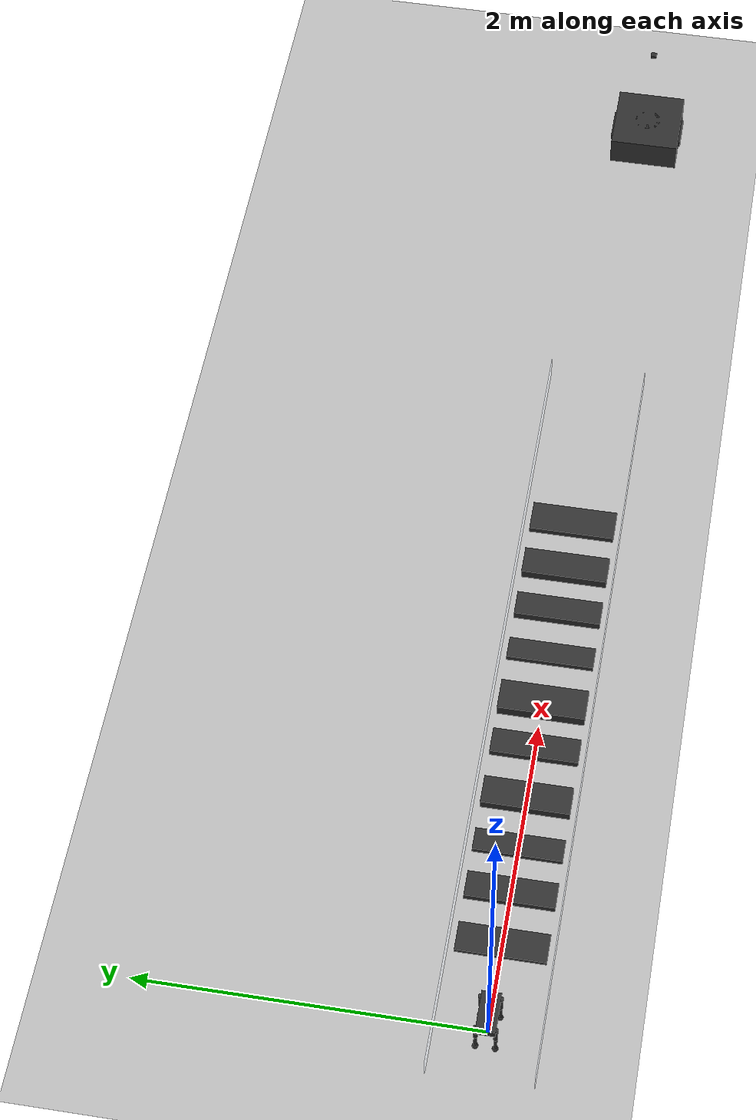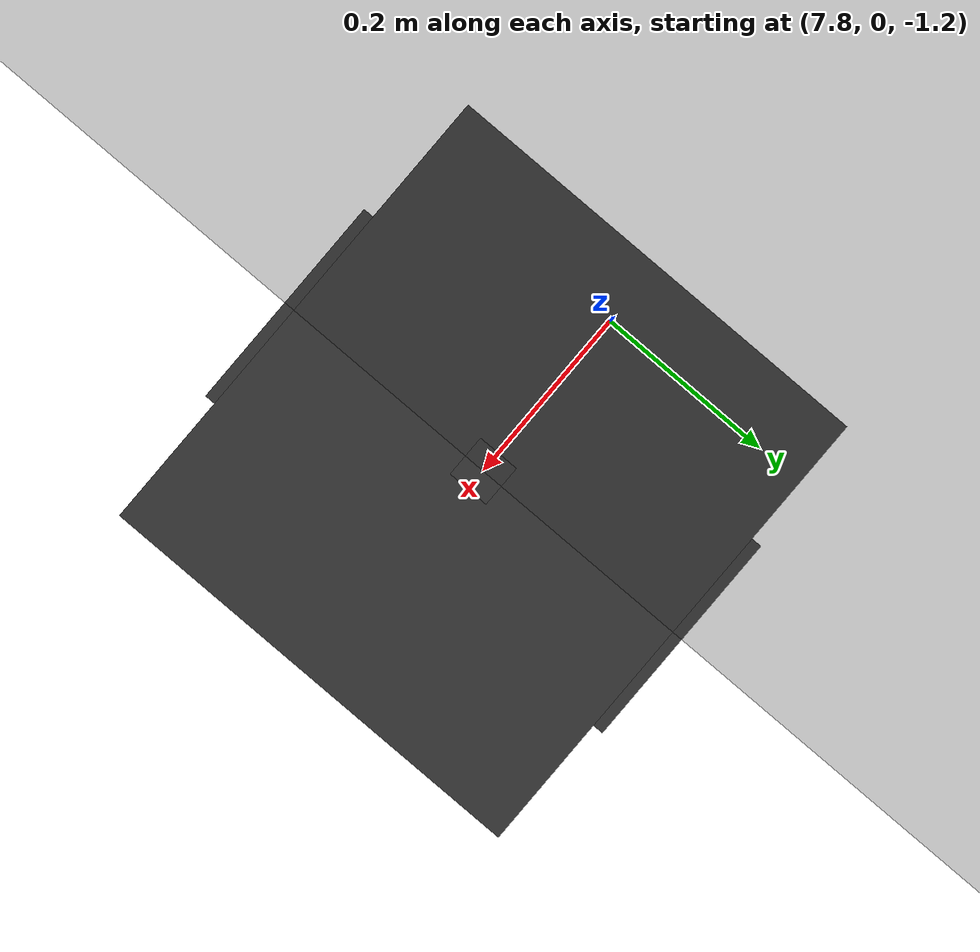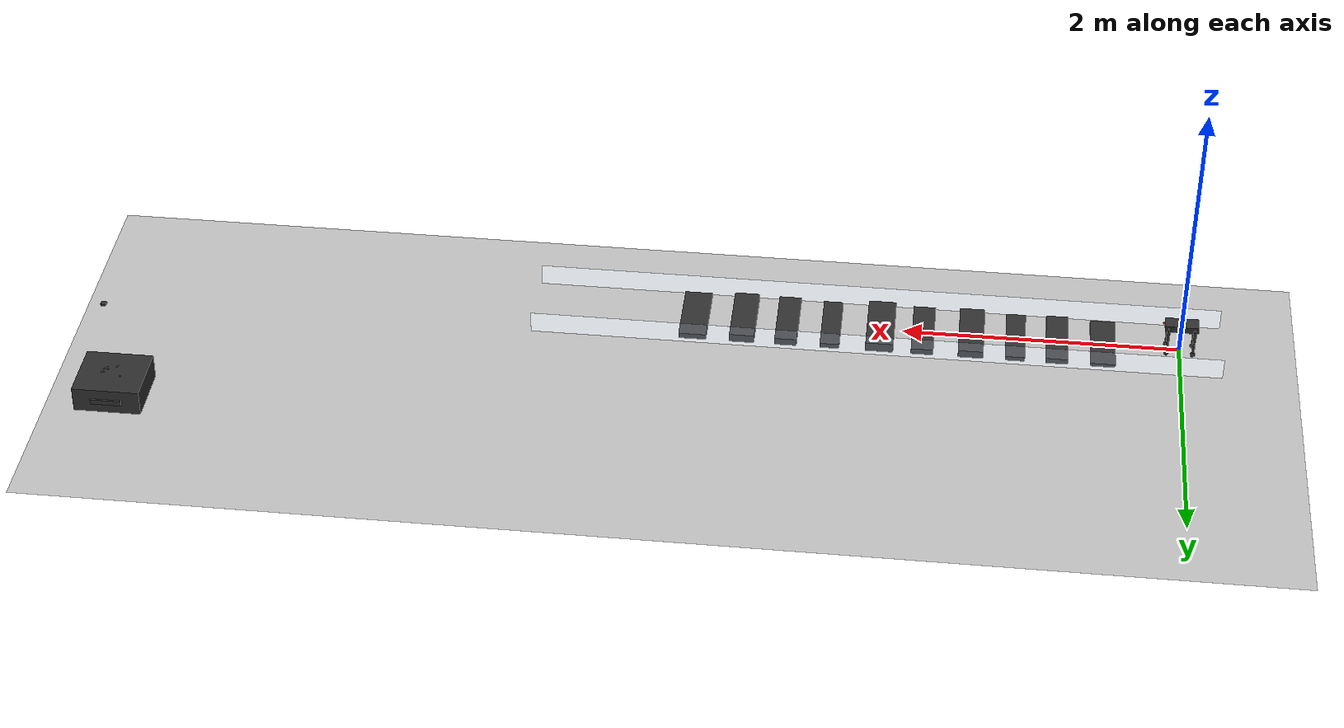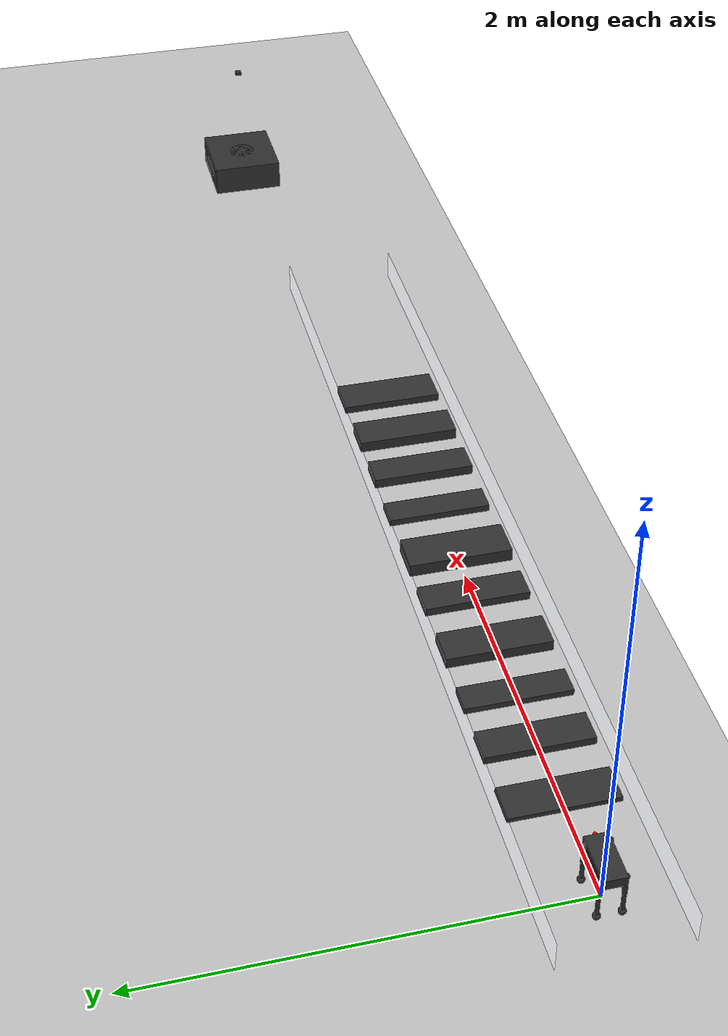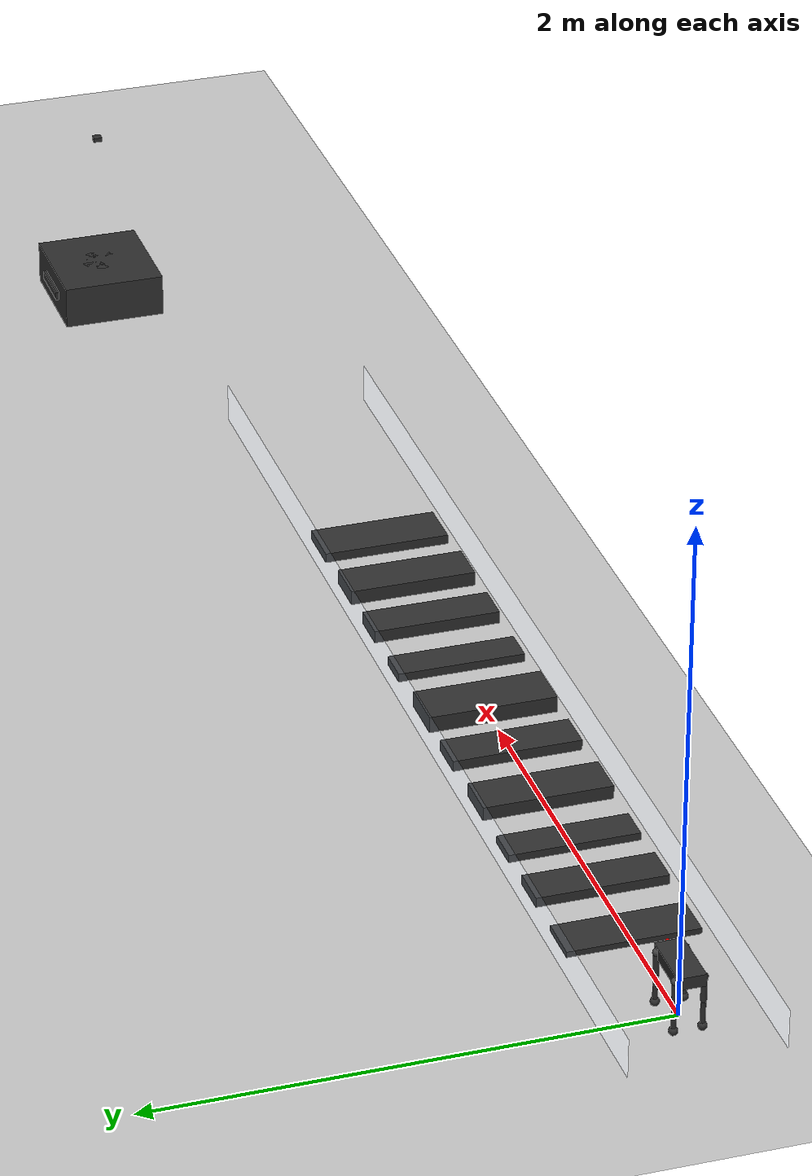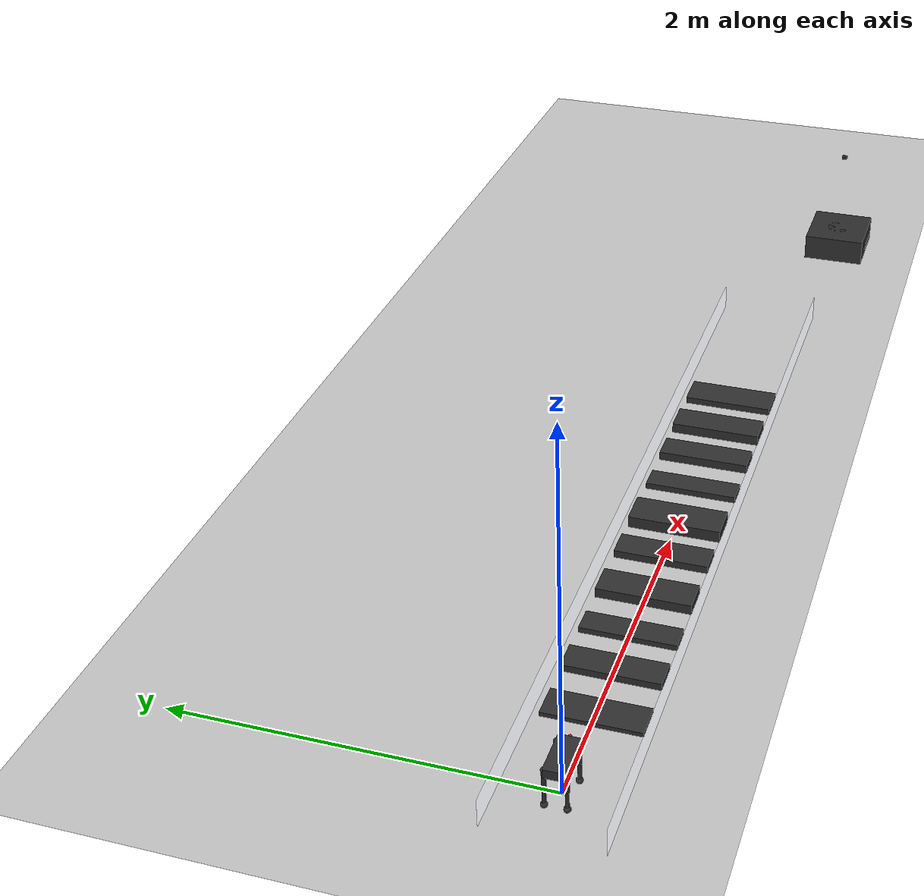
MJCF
<mujoco model="pupper_like_preview_terrain">
  <compiler angle="radian" autolimits="true"/>
  <option timestep="0.002" gravity="0 0 -9.81" iterations="50" solver="Newton"/>
  <visual>
    <headlight ambient="0.4 0.4 0.4" diffuse="0.8 0.8 0.8" specular="0.2 0.2 0.2"/>
    <rgba haze="0.15 0.25 0.35 1"/>
  </visual>

  <default>
    <default class="visual">
      <geom contype="0" conaffinity="0" group="2" rgba="0.25 0.25 0.25 1"/>
    </default>
    <default class="collision">
      <geom group="3" friction="1.2 0.02 0.01" solimp="0.9 0.95 0.001" solref="0.004 1"/>
    </default>
    <joint damping="1.5" armature="0.01" frictionloss="0.02"/>
    <position kp="35" ctrllimited="true" ctrlrange="-1.6 1.6"/>
    <geom type="capsule" rgba="0.18 0.18 0.18 1" size="0.012"/>
  </default>

  <asset>
    <texture type="skybox" builtin="gradient" rgb1="0.75 0.85 0.95" rgb2="0.98 0.99 1" width="256" height="256"/>
    <texture name="ground_tex" type="2d" builtin="checker" rgb1="0.18 0.22 0.18" rgb2="0.22 0.26 0.22" width="256" height="256"/>
    <material name="ground_mat" texture="ground_tex" texrepeat="6 6" reflectance="0.05"/>
    <material name="terrain_mat" rgba="0.36 0.31 0.22 1"/>
    <material name="wall_mat" rgba="0.92 0.96 1.00 0.0"/>
    <material name="body_mat" rgba="0.12 0.12 0.14 1"/>
    <material name="leg_mat" rgba="0.28 0.28 0.30 1"/>
    <material name="foot_mat" rgba="0.10 0.10 0.10 1"/>
  </asset>

  <worldbody>
    <light pos="0 0 2.5" dir="0 0 -1"/>
    <geom name="ground" type="plane" size="8 4 0.1" material="ground_mat" friction="1.4 0.03 0.01" solimp="0.92 0.98 0.001" solref="0.006 1"/>
    <camera name="overview_camera" pos="-2.8 -1.8 1.2" xyaxes="0.95 -0.3 0 0.1 0.3 0.95" fovy="55"/>

    <!-- Constrain the robot to a forward corridor so it cannot cheat by
         going around the preview terrain from the side. -->
    <geom name="wall_left" type="box" pos="2.2 0.30 0.08" size="2.5 0.02 0.08" material="wall_mat" rgba="0.92 0.96 1.00 0.0" friction="0.8 0.01 0.01"/>
    <geom name="wall_right" type="box" pos="2.2 -0.30 0.08" size="2.5 0.02 0.08" material="wall_mat" rgba="0.92 0.96 1.00 0.0" friction="0.8 0.01 0.01"/>
    <geom name="wall_left_outline" type="box" pos="2.2 0.30 0.08" size="2.5 0.0009 0.08" contype="0" conaffinity="0" rgba="0.82 0.88 0.96 0.32"/>
    <geom name="wall_right_outline" type="box" pos="2.2 -0.30 0.08" size="2.5 0.0009 0.08" contype="0" conaffinity="0" rgba="0.82 0.88 0.96 0.32"/>

    <geom name="bump_01" type="box" pos="0.55 0 0.012" size="0.09 0.26 0.012" material="terrain_mat" friction="1.5 0.03 0.01" solimp="0.92 0.98 0.001" solref="0.006 1"/>
    <geom name="bump_02" type="box" pos="0.88 0 0.020" size="0.08 0.26 0.020" material="terrain_mat" friction="1.5 0.03 0.01" solimp="0.92 0.98 0.001" solref="0.006 1"/>
    <geom name="bump_03" type="box" pos="1.18 0 0.016" size="0.07 0.26 0.016" material="terrain_mat" friction="1.5 0.03 0.01" solimp="0.92 0.98 0.001" solref="0.006 1"/>
    <geom name="bump_04" type="box" pos="1.50 0 0.028" size="0.09 0.26 0.028" material="terrain_mat" friction="1.5 0.03 0.01" solimp="0.92 0.98 0.001" solref="0.006 1"/>
    <geom name="bump_05" type="box" pos="1.85 0 0.022" size="0.08 0.26 0.022" material="terrain_mat" friction="1.5 0.03 0.01" solimp="0.92 0.98 0.001" solref="0.006 1"/>
    <geom name="bump_06" type="box" pos="2.16 0 0.034" size="0.10 0.26 0.034" material="terrain_mat" friction="1.5 0.03 0.01" solimp="0.92 0.98 0.001" solref="0.006 1"/>
    <geom name="bump_07" type="box" pos="2.52 0 0.018" size="0.07 0.26 0.018" material="terrain_mat" friction="1.5 0.03 0.01" solimp="0.92 0.98 0.001" solref="0.006 1"/>
    <geom name="bump_08" type="box" pos="2.84 0 0.026" size="0.08 0.26 0.026" material="terrain_mat" friction="1.5 0.03 0.01" solimp="0.92 0.98 0.001" solref="0.006 1"/>
    <geom name="bump_09" type="box" pos="3.16 0 0.030" size="0.09 0.26 0.030" material="terrain_mat" friction="1.5 0.03 0.01" solimp="0.92 0.98 0.001" solref="0.006 1"/>
    <geom name="bump_10" type="box" pos="3.52 0 0.020" size="0.10 0.26 0.020" material="terrain_mat" friction="1.5 0.03 0.01" solimp="0.92 0.98 0.001" solref="0.006 1"/>
    <geom name="bump_11" type="box" pos="8.0 0 -0.25" size="0.02 0.02 0.01" material="terrain_mat" friction="1.5 0.03 0.01" solimp="0.92 0.98 0.001" solref="0.006 1"/>
    <geom name="bump_12" type="box" pos="8.0 0 -0.25" size="0.02 0.02 0.01" material="terrain_mat" friction="1.5 0.03 0.01" solimp="0.92 0.98 0.001" solref="0.006 1"/>
    <geom name="bump_13" type="box" pos="8.0 0 -0.25" size="0.02 0.02 0.01" material="terrain_mat" friction="1.5 0.03 0.01" solimp="0.92 0.98 0.001" solref="0.006 1"/>
    <geom name="bump_14" type="box" pos="8.0 0 -0.25" size="0.02 0.02 0.01" material="terrain_mat" friction="1.5 0.03 0.01" solimp="0.92 0.98 0.001" solref="0.006 1"/>
    <geom name="bump_15" type="box" pos="8.0 0 -0.25" size="0.02 0.02 0.01" material="terrain_mat" friction="1.5 0.03 0.01" solimp="0.92 0.98 0.001" solref="0.006 1"/>
    <geom name="bump_16" type="box" pos="8.0 0 -0.25" size="0.02 0.02 0.01" material="terrain_mat" friction="1.5 0.03 0.01" solimp="0.92 0.98 0.001" solref="0.006 1"/>
    <geom name="bump_17" type="box" pos="8.0 0 -0.25" size="0.02 0.02 0.01" material="terrain_mat" friction="1.5 0.03 0.01" solimp="0.92 0.98 0.001" solref="0.006 1"/>
    <geom name="bump_18" type="box" pos="8.0 0 -0.25" size="0.02 0.02 0.01" material="terrain_mat" friction="1.5 0.03 0.01" solimp="0.92 0.98 0.001" solref="0.006 1"/>
    <geom name="bump_19" type="box" pos="8.0 0 -0.25" size="0.02 0.02 0.01" material="terrain_mat" friction="1.5 0.03 0.01" solimp="0.92 0.98 0.001" solref="0.006 1"/>
    <geom name="bump_20" type="box" pos="8.0 0 -0.25" size="0.02 0.02 0.01" material="terrain_mat" friction="1.5 0.03 0.01" solimp="0.92 0.98 0.001" solref="0.006 1"/>
    <geom name="bump_21" type="box" pos="8.0 0 -0.25" size="0.02 0.02 0.01" material="terrain_mat" friction="1.5 0.03 0.01" solimp="0.92 0.98 0.001" solref="0.006 1"/>
    <geom name="bump_22" type="box" pos="8.0 0 -0.25" size="0.02 0.02 0.01" material="terrain_mat" friction="1.5 0.03 0.01" solimp="0.92 0.98 0.001" solref="0.006 1"/>
    <geom name="bump_23" type="box" pos="8.0 0 -0.25" size="0.02 0.02 0.01" material="terrain_mat" friction="1.5 0.03 0.01" solimp="0.92 0.98 0.001" solref="0.006 1"/>
    <geom name="bump_24" type="box" pos="8.0 0 -0.25" size="0.02 0.02 0.01" material="terrain_mat" friction="1.5 0.03 0.01" solimp="0.92 0.98 0.001" solref="0.006 1"/>
    <geom name="bump_25" type="box" pos="8.0 0 -0.25" size="0.02 0.02 0.01" material="terrain_mat" friction="1.5 0.03 0.01" solimp="0.92 0.98 0.001" solref="0.006 1"/>
    <geom name="bump_26" type="box" pos="8.0 0 -0.25" size="0.02 0.02 0.01" material="terrain_mat" friction="1.5 0.03 0.01" solimp="0.92 0.98 0.001" solref="0.006 1"/>
    <geom name="bump_27" type="box" pos="8.0 0 -0.25" size="0.02 0.02 0.01" material="terrain_mat" friction="1.5 0.03 0.01" solimp="0.92 0.98 0.001" solref="0.006 1"/>
    <geom name="bump_28" type="box" pos="8.0 0 -0.25" size="0.02 0.02 0.01" material="terrain_mat" friction="1.5 0.03 0.01" solimp="0.92 0.98 0.001" solref="0.006 1"/>
    <geom name="bump_29" type="box" pos="8.0 0 -0.25" size="0.02 0.02 0.01" material="terrain_mat" friction="1.5 0.03 0.01" solimp="0.92 0.98 0.001" solref="0.006 1"/>
    <geom name="bump_30" type="box" pos="8.0 0 -0.25" size="0.02 0.02 0.01" material="terrain_mat" friction="1.5 0.03 0.01" solimp="0.92 0.98 0.001" solref="0.006 1"/>
    <geom name="bump_31" type="box" pos="8.0 0 -0.25" size="0.02 0.02 0.01" material="terrain_mat" friction="1.5 0.03 0.01" solimp="0.92 0.98 0.001" solref="0.006 1"/>
    <geom name="bump_32" type="box" pos="8.0 0 -0.25" size="0.02 0.02 0.01" material="terrain_mat" friction="1.5 0.03 0.01" solimp="0.92 0.98 0.001" solref="0.006 1"/>
    <geom name="bump_33" type="box" pos="8.0 0 -0.25" size="0.02 0.02 0.01" material="terrain_mat" friction="1.5 0.03 0.01" solimp="0.92 0.98 0.001" solref="0.006 1"/>
    <geom name="bump_34" type="box" pos="8.0 0 -0.25" size="0.02 0.02 0.01" material="terrain_mat" friction="1.5 0.03 0.01" solimp="0.92 0.98 0.001" solref="0.006 1"/>
    <geom name="bump_35" type="box" pos="8.0 0 -0.25" size="0.02 0.02 0.01" material="terrain_mat" friction="1.5 0.03 0.01" solimp="0.92 0.98 0.001" solref="0.006 1"/>
    <geom name="bump_36" type="box" pos="8.0 0 -0.25" size="0.02 0.02 0.01" material="terrain_mat" friction="1.5 0.03 0.01" solimp="0.92 0.98 0.001" solref="0.006 1"/>
    <geom name="bump_37" type="box" pos="8.0 0 -0.25" size="0.02 0.02 0.01" material="terrain_mat" friction="1.5 0.03 0.01" solimp="0.92 0.98 0.001" solref="0.006 1"/>
    <geom name="bump_38" type="box" pos="8.0 0 -0.25" size="0.02 0.02 0.01" material="terrain_mat" friction="1.5 0.03 0.01" solimp="0.92 0.98 0.001" solref="0.006 1"/>
    <geom name="bump_39" type="box" pos="8.0 0 -0.25" size="0.02 0.02 0.01" material="terrain_mat" friction="1.5 0.03 0.01" solimp="0.92 0.98 0.001" solref="0.006 1"/>
    <geom name="bump_40" type="box" pos="8.0 0 -0.25" size="0.02 0.02 0.01" material="terrain_mat" friction="1.5 0.03 0.01" solimp="0.92 0.98 0.001" solref="0.006 1"/>

    <!-- Dedicated physical geoms for precision stepping stones.
         These are attached to mocap bodies so their positions can change at
         runtime while keeping MuJoCo collision geometry valid. -->
    <body name="precision_platform_body" mocap="true" pos="8.0 0 -1.0">
      <geom name="precision_platform_geom" type="box" pos="0 0 0" size="0.26 0.24 0.10" material="terrain_mat" friction="1.5 0.03 0.01" solimp="0.92 0.98 0.001" solref="0.006 1"/>
    </body>
    <body name="precision_stone_01_body" mocap="true" pos="8.0 0 -1.0"><geom name="precision_stone_01_geom" type="cylinder" pos="0 0 0" size="0.09 0.10 0" material="terrain_mat" friction="1.5 0.03 0.01" solimp="0.92 0.98 0.001" solref="0.006 1"/></body>
    <body name="precision_stone_02_body" mocap="true" pos="8.0 0 -1.0"><geom name="precision_stone_02_geom" type="cylinder" pos="0 0 0" size="0.09 0.10 0" material="terrain_mat" friction="1.5 0.03 0.01" solimp="0.92 0.98 0.001" solref="0.006 1"/></body>
    <body name="precision_stone_03_body" mocap="true" pos="8.0 0 -1.0"><geom name="precision_stone_03_geom" type="cylinder" pos="0 0 0" size="0.09 0.10 0" material="terrain_mat" friction="1.5 0.03 0.01" solimp="0.92 0.98 0.001" solref="0.006 1"/></body>
    <body name="precision_stone_04_body" mocap="true" pos="8.0 0 -1.0"><geom name="precision_stone_04_geom" type="cylinder" pos="0 0 0" size="0.09 0.10 0" material="terrain_mat" friction="1.5 0.03 0.01" solimp="0.92 0.98 0.001" solref="0.006 1"/></body>
    <body name="precision_stone_05_body" mocap="true" pos="8.0 0 -1.0"><geom name="precision_stone_05_geom" type="cylinder" pos="0 0 0" size="0.09 0.10 0" material="terrain_mat" friction="1.5 0.03 0.01" solimp="0.92 0.98 0.001" solref="0.006 1"/></body>
    <body name="precision_stone_06_body" mocap="true" pos="8.0 0 -1.0"><geom name="precision_stone_06_geom" type="cylinder" pos="0 0 0" size="0.09 0.10 0" material="terrain_mat" friction="1.5 0.03 0.01" solimp="0.92 0.98 0.001" solref="0.006 1"/></body>
    <body name="precision_stone_07_body" mocap="true" pos="8.0 0 -1.0"><geom name="precision_stone_07_geom" type="cylinder" pos="0 0 0" size="0.09 0.10 0" material="terrain_mat" friction="1.5 0.03 0.01" solimp="0.92 0.98 0.001" solref="0.006 1"/></body>
    <body name="precision_stone_08_body" mocap="true" pos="8.0 0 -1.0"><geom name="precision_stone_08_geom" type="cylinder" pos="0 0 0" size="0.09 0.10 0" material="terrain_mat" friction="1.5 0.03 0.01" solimp="0.92 0.98 0.001" solref="0.006 1"/></body>
    <body name="precision_stone_09_body" mocap="true" pos="8.0 0 -1.0"><geom name="precision_stone_09_geom" type="cylinder" pos="0 0 0" size="0.09 0.10 0" material="terrain_mat" friction="1.5 0.03 0.01" solimp="0.92 0.98 0.001" solref="0.006 1"/></body>
    <body name="precision_stone_10_body" mocap="true" pos="8.0 0 -1.0"><geom name="precision_stone_10_geom" type="cylinder" pos="0 0 0" size="0.09 0.10 0" material="terrain_mat" friction="1.5 0.03 0.01" solimp="0.92 0.98 0.001" solref="0.006 1"/></body>
    <body name="precision_stone_11_body" mocap="true" pos="8.0 0 -1.0"><geom name="precision_stone_11_geom" type="cylinder" pos="0 0 0" size="0.09 0.10 0" material="terrain_mat" friction="1.5 0.03 0.01" solimp="0.92 0.98 0.001" solref="0.006 1"/></body>
    <body name="precision_stone_12_body" mocap="true" pos="8.0 0 -1.0"><geom name="precision_stone_12_geom" type="cylinder" pos="0 0 0" size="0.09 0.10 0" material="terrain_mat" friction="1.5 0.03 0.01" solimp="0.92 0.98 0.001" solref="0.006 1"/></body>
    <body name="precision_stone_13_body" mocap="true" pos="8.0 0 -1.0"><geom name="precision_stone_13_geom" type="cylinder" pos="0 0 0" size="0.09 0.10 0" material="terrain_mat" friction="1.5 0.03 0.01" solimp="0.92 0.98 0.001" solref="0.006 1"/></body>
    <body name="precision_stone_14_body" mocap="true" pos="8.0 0 -1.0"><geom name="precision_stone_14_geom" type="cylinder" pos="0 0 0" size="0.09 0.10 0" material="terrain_mat" friction="1.5 0.03 0.01" solimp="0.92 0.98 0.001" solref="0.006 1"/></body>
    <body name="precision_stone_15_body" mocap="true" pos="8.0 0 -1.0"><geom name="precision_stone_15_geom" type="cylinder" pos="0 0 0" size="0.09 0.10 0" material="terrain_mat" friction="1.5 0.03 0.01" solimp="0.92 0.98 0.001" solref="0.006 1"/></body>
    <body name="precision_stone_16_body" mocap="true" pos="8.0 0 -1.0"><geom name="precision_stone_16_geom" type="cylinder" pos="0 0 0" size="0.09 0.10 0" material="terrain_mat" friction="1.5 0.03 0.01" solimp="0.92 0.98 0.001" solref="0.006 1"/></body>
    <body name="precision_stone_17_body" mocap="true" pos="8.0 0 -1.0"><geom name="precision_stone_17_geom" type="cylinder" pos="0 0 0" size="0.09 0.10 0" material="terrain_mat" friction="1.5 0.03 0.01" solimp="0.92 0.98 0.001" solref="0.006 1"/></body>
    <body name="precision_stone_18_body" mocap="true" pos="8.0 0 -1.0"><geom name="precision_stone_18_geom" type="cylinder" pos="0 0 0" size="0.09 0.10 0" material="terrain_mat" friction="1.5 0.03 0.01" solimp="0.92 0.98 0.001" solref="0.006 1"/></body>
    <body name="precision_stone_19_body" mocap="true" pos="8.0 0 -1.0"><geom name="precision_stone_19_geom" type="cylinder" pos="0 0 0" size="0.09 0.10 0" material="terrain_mat" friction="1.5 0.03 0.01" solimp="0.92 0.98 0.001" solref="0.006 1"/></body>
    <body name="precision_stone_20_body" mocap="true" pos="8.0 0 -1.0"><geom name="precision_stone_20_geom" type="cylinder" pos="0 0 0" size="0.09 0.10 0" material="terrain_mat" friction="1.5 0.03 0.01" solimp="0.92 0.98 0.001" solref="0.006 1"/></body>
    <body name="precision_stone_21_body" mocap="true" pos="8.0 0 -1.0"><geom name="precision_stone_21_geom" type="cylinder" pos="0 0 0" size="0.09 0.10 0" material="terrain_mat" friction="1.5 0.03 0.01" solimp="0.92 0.98 0.001" solref="0.006 1"/></body>
    <body name="precision_stone_22_body" mocap="true" pos="8.0 0 -1.0"><geom name="precision_stone_22_geom" type="cylinder" pos="0 0 0" size="0.09 0.10 0" material="terrain_mat" friction="1.5 0.03 0.01" solimp="0.92 0.98 0.001" solref="0.006 1"/></body>
    <body name="precision_stone_23_body" mocap="true" pos="8.0 0 -1.0"><geom name="precision_stone_23_geom" type="cylinder" pos="0 0 0" size="0.09 0.10 0" material="terrain_mat" friction="1.5 0.03 0.01" solimp="0.92 0.98 0.001" solref="0.006 1"/></body>
    <body name="precision_stone_24_body" mocap="true" pos="8.0 0 -1.0"><geom name="precision_stone_24_geom" type="cylinder" pos="0 0 0" size="0.09 0.10 0" material="terrain_mat" friction="1.5 0.03 0.01" solimp="0.92 0.98 0.001" solref="0.006 1"/></body>
    <body name="stair_step_01_body" mocap="true" pos="8.0 0 -1.0"><geom name="stair_step_01_geom" type="box" pos="0 0 0" size="0.12 0.255 0.02" material="terrain_mat" friction="1.5 0.03 0.01" solimp="0.92 0.98 0.001" solref="0.006 1"/></body>
    <body name="stair_step_02_body" mocap="true" pos="8.0 0 -1.0"><geom name="stair_step_02_geom" type="box" pos="0 0 0" size="0.12 0.255 0.02" material="terrain_mat" friction="1.5 0.03 0.01" solimp="0.92 0.98 0.001" solref="0.006 1"/></body>
    <body name="stair_step_03_body" mocap="true" pos="8.0 0 -1.0"><geom name="stair_step_03_geom" type="box" pos="0 0 0" size="0.12 0.255 0.02" material="terrain_mat" friction="1.5 0.03 0.01" solimp="0.92 0.98 0.001" solref="0.006 1"/></body>
    <body name="stair_step_04_body" mocap="true" pos="8.0 0 -1.0"><geom name="stair_step_04_geom" type="box" pos="0 0 0" size="0.12 0.255 0.02" material="terrain_mat" friction="1.5 0.03 0.01" solimp="0.92 0.98 0.001" solref="0.006 1"/></body>
    <body name="stair_step_05_body" mocap="true" pos="8.0 0 -1.0"><geom name="stair_step_05_geom" type="box" pos="0 0 0" size="0.12 0.255 0.02" material="terrain_mat" friction="1.5 0.03 0.01" solimp="0.92 0.98 0.001" solref="0.006 1"/></body>
    <body name="stair_step_06_body" mocap="true" pos="8.0 0 -1.0"><geom name="stair_step_06_geom" type="box" pos="0 0 0" size="0.12 0.255 0.02" material="terrain_mat" friction="1.5 0.03 0.01" solimp="0.92 0.98 0.001" solref="0.006 1"/></body>
    <body name="stair_step_07_body" mocap="true" pos="8.0 0 -1.0"><geom name="stair_step_07_geom" type="box" pos="0 0 0" size="0.12 0.255 0.02" material="terrain_mat" friction="1.5 0.03 0.01" solimp="0.92 0.98 0.001" solref="0.006 1"/></body>
    <body name="stair_step_08_body" mocap="true" pos="8.0 0 -1.0"><geom name="stair_step_08_geom" type="box" pos="0 0 0" size="0.12 0.255 0.02" material="terrain_mat" friction="1.5 0.03 0.01" solimp="0.92 0.98 0.001" solref="0.006 1"/></body>
    <body name="stair_step_09_body" mocap="true" pos="8.0 0 -1.0"><geom name="stair_step_09_geom" type="box" pos="0 0 0" size="0.12 0.255 0.02" material="terrain_mat" friction="1.5 0.03 0.01" solimp="0.92 0.98 0.001" solref="0.006 1"/></body>
    <body name="stair_step_10_body" mocap="true" pos="8.0 0 -1.0"><geom name="stair_step_10_geom" type="box" pos="0 0 0" size="0.12 0.255 0.02" material="terrain_mat" friction="1.5 0.03 0.01" solimp="0.92 0.98 0.001" solref="0.006 1"/></body>
    <body name="stair_step_11_body" mocap="true" pos="8.0 0 -1.0"><geom name="stair_step_11_geom" type="box" pos="0 0 0" size="0.12 0.255 0.02" material="terrain_mat" friction="1.5 0.03 0.01" solimp="0.92 0.98 0.001" solref="0.006 1"/></body>
    <body name="stair_step_12_body" mocap="true" pos="8.0 0 -1.0"><geom name="stair_step_12_geom" type="box" pos="0 0 0" size="0.12 0.255 0.02" material="terrain_mat" friction="1.5 0.03 0.01" solimp="0.92 0.98 0.001" solref="0.006 1"/></body>

    <body name="torso" pos="0 0 0.22">
      <freejoint/>
      <inertial pos="0 0 0" mass="1.2" diaginertia="0.010 0.024 0.026"/>
      <geom name="torso_geom" type="box" size="0.12 0.055 0.025" material="body_mat"/>
      <site name="imu_site" pos="0 0 0.02" size="0.008" rgba="0 1 0 1"/>
      <site name="front_camera_site" pos="0.13 0 0.015" size="0.008" rgba="1 0 0 1"/>
      <camera name="front_camera" pos="0.13 0 0.015" quat="0.7071068 0 -0.7071068 0" fovy="75"/>

      <body name="fl_abad_link" pos="0.095 0.055 0">
        <joint name="fl_abduction" type="hinge" axis="1 0 0" range="-0.7 0.7"/>
        <inertial pos="0 0 -0.01" mass="0.08" diaginertia="0.00015 0.00015 0.00008"/>
        <geom class="visual" type="sphere" size="0.015" pos="0 0 0" material="leg_mat"/>
        <geom class="collision" type="sphere" size="0.015" pos="0 0 0" material="leg_mat"/>
        <body name="fl_thigh" pos="0 0 0">
          <joint name="fl_hip" type="hinge" axis="0 1 0" range="-1.8 1.3"/>
          <inertial pos="0 0 -0.05" mass="0.18" diaginertia="0.0012 0.0012 0.0002"/>
          <geom fromto="0 0 0 0 0 -0.10" size="0.012" material="leg_mat"/>
          <body name="fl_shank" pos="0 0 -0.10">
            <joint name="fl_knee" type="hinge" axis="0 1 0" range="-2.2 0.0"/>
            <inertial pos="0 0 -0.055" mass="0.12" diaginertia="0.0007 0.0007 0.00012"/>
            <geom fromto="0 0 0 0 0 -0.11" size="0.010" material="leg_mat"/>
            <body name="fl_foot" pos="0 0 -0.11">
              <geom name="fl_foot_geom" type="sphere" size="0.018" material="foot_mat" friction="1.6 0.03 0.01"/>
              <site name="fl_foot_site" pos="0 0 0" size="0.01" rgba="0 0 1 1"/>
            </body>
          </body>
        </body>
      </body>

      <body name="fr_abad_link" pos="0.095 -0.055 0">
        <joint name="fr_abduction" type="hinge" axis="1 0 0" range="-0.7 0.7"/>
        <inertial pos="0 0 -0.01" mass="0.08" diaginertia="0.00015 0.00015 0.00008"/>
        <geom class="visual" type="sphere" size="0.015" pos="0 0 0" material="leg_mat"/>
        <geom class="collision" type="sphere" size="0.015" pos="0 0 0" material="leg_mat"/>
        <body name="fr_thigh" pos="0 0 0">
          <joint name="fr_hip" type="hinge" axis="0 1 0" range="-1.8 1.3"/>
          <inertial pos="0 0 -0.05" mass="0.18" diaginertia="0.0012 0.0012 0.0002"/>
          <geom fromto="0 0 0 0 0 -0.10" size="0.012" material="leg_mat"/>
          <body name="fr_shank" pos="0 0 -0.10">
            <joint name="fr_knee" type="hinge" axis="0 1 0" range="-2.2 0.0"/>
            <inertial pos="0 0 -0.055" mass="0.12" diaginertia="0.0007 0.0007 0.00012"/>
            <geom fromto="0 0 0 0 0 -0.11" size="0.010" material="leg_mat"/>
            <body name="fr_foot" pos="0 0 -0.11">
              <geom name="fr_foot_geom" type="sphere" size="0.018" material="foot_mat" friction="1.6 0.03 0.01"/>
              <site name="fr_foot_site" pos="0 0 0" size="0.01" rgba="0 0 1 1"/>
            </body>
          </body>
        </body>
      </body>

      <body name="rl_abad_link" pos="-0.095 0.055 0">
        <joint name="rl_abduction" type="hinge" axis="1 0 0" range="-0.7 0.7"/>
        <inertial pos="0 0 -0.01" mass="0.08" diaginertia="0.00015 0.00015 0.00008"/>
        <geom class="visual" type="sphere" size="0.015" pos="0 0 0" material="leg_mat"/>
        <geom class="collision" type="sphere" size="0.015" pos="0 0 0" material="leg_mat"/>
        <body name="rl_thigh" pos="0 0 0">
          <joint name="rl_hip" type="hinge" axis="0 1 0" range="-1.8 1.3"/>
          <inertial pos="0 0 -0.05" mass="0.18" diaginertia="0.0012 0.0012 0.0002"/>
          <geom fromto="0 0 0 0 0 -0.10" size="0.012" material="leg_mat"/>
          <body name="rl_shank" pos="0 0 -0.10">
            <joint name="rl_knee" type="hinge" axis="0 1 0" range="-2.2 0.0"/>
            <inertial pos="0 0 -0.055" mass="0.12" diaginertia="0.0007 0.0007 0.00012"/>
            <geom fromto="0 0 0 0 0 -0.11" size="0.010" material="leg_mat"/>
            <body name="rl_foot" pos="0 0 -0.11">
              <geom name="rl_foot_geom" type="sphere" size="0.018" material="foot_mat" friction="1.6 0.03 0.01"/>
              <site name="rl_foot_site" pos="0 0 0" size="0.01" rgba="0 0 1 1"/>
            </body>
          </body>
        </body>
      </body>

      <body name="rr_abad_link" pos="-0.095 -0.055 0">
        <joint name="rr_abduction" type="hinge" axis="1 0 0" range="-0.7 0.7"/>
        <inertial pos="0 0 -0.01" mass="0.08" diaginertia="0.00015 0.00015 0.00008"/>
        <geom class="visual" type="sphere" size="0.015" pos="0 0 0" material="leg_mat"/>
        <geom class="collision" type="sphere" size="0.015" pos="0 0 0" material="leg_mat"/>
        <body name="rr_thigh" pos="0 0 0">
          <joint name="rr_hip" type="hinge" axis="0 1 0" range="-1.8 1.3"/>
          <inertial pos="0 0 -0.05" mass="0.18" diaginertia="0.0012 0.0012 0.0002"/>
          <geom fromto="0 0 0 0 0 -0.10" size="0.012" material="leg_mat"/>
          <body name="rr_shank" pos="0 0 -0.10">
            <joint name="rr_knee" type="hinge" axis="0 1 0" range="-2.2 0.0"/>
            <inertial pos="0 0 -0.055" mass="0.12" diaginertia="0.0007 0.0007 0.00012"/>
            <geom fromto="0 0 0 0 0 -0.11" size="0.010" material="leg_mat"/>
            <body name="rr_foot" pos="0 0 -0.11">
              <geom name="rr_foot_geom" type="sphere" size="0.018" material="foot_mat" friction="1.6 0.03 0.01"/>
              <site name="rr_foot_site" pos="0 0 0" size="0.01" rgba="0 0 1 1"/>
            </body>
          </body>
        </body>
      </body>
    </body>
  </worldbody>

  <actuator>
    <position name="fl_abduction_act" joint="fl_abduction"/>
    <position name="fl_hip_act" joint="fl_hip"/>
    <position name="fl_knee_act" joint="fl_knee"/>
    <position name="fr_abduction_act" joint="fr_abduction"/>
    <position name="fr_hip_act" joint="fr_hip"/>
    <position name="fr_knee_act" joint="fr_knee"/>
    <position name="rl_abduction_act" joint="rl_abduction"/>
    <position name="rl_hip_act" joint="rl_hip"/>
    <position name="rl_knee_act" joint="rl_knee"/>
    <position name="rr_abduction_act" joint="rr_abduction"/>
    <position name="rr_hip_act" joint="rr_hip"/>
    <position name="rr_knee_act" joint="rr_knee"/>
  </actuator>

  <sensor>
    <framequat name="imu_quat" objtype="site" objname="imu_site"/>
    <gyro name="imu_gyro" site="imu_site"/>
    <accelerometer name="imu_accel" site="imu_site"/>
  </sensor>
</mujoco>
